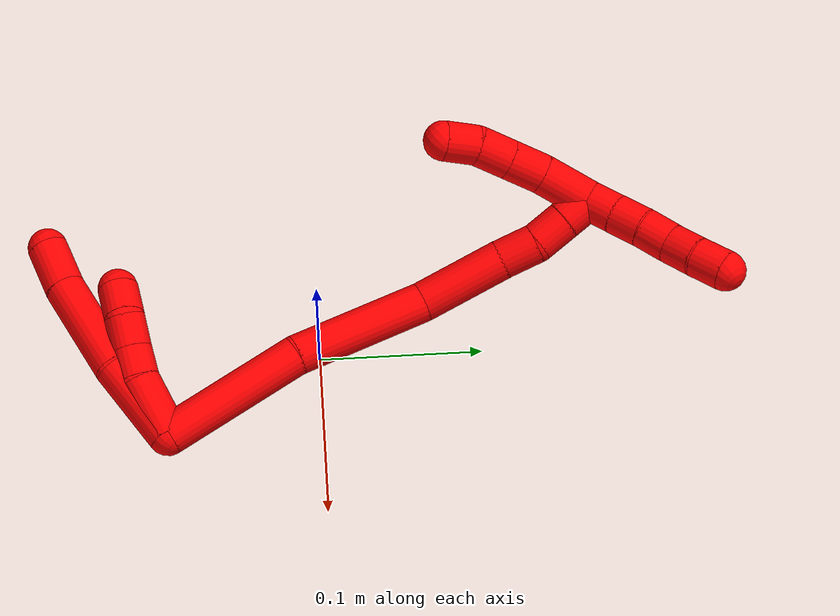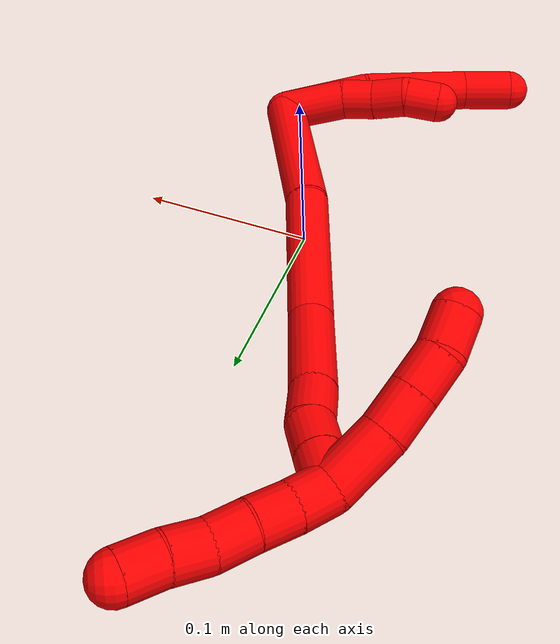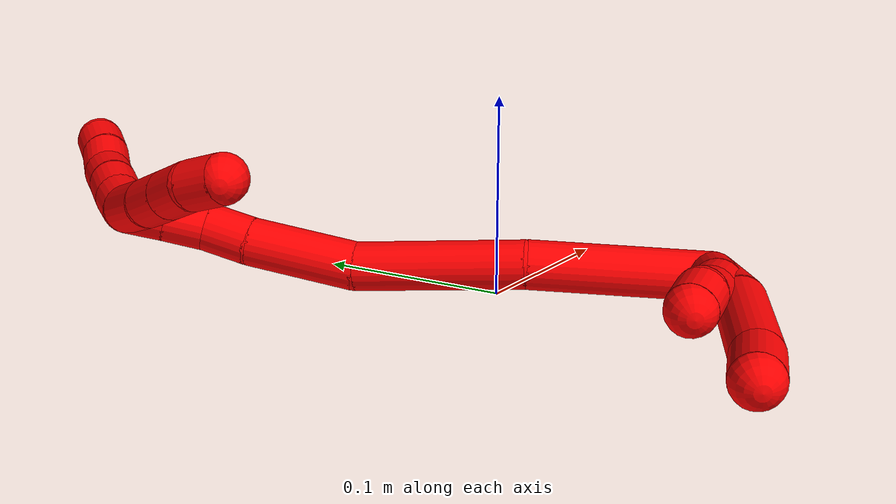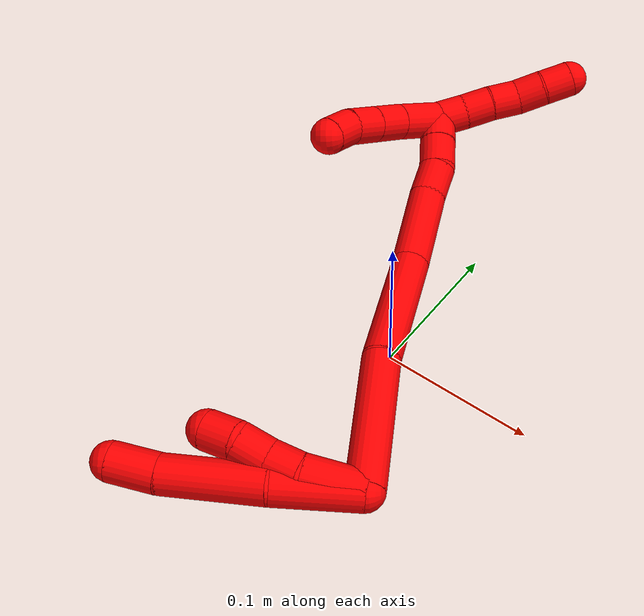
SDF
<sdf version="1.7">
 <world name="default">
  <model name="2">
   <static>0</static>
   <link name="2">
    <collision name="collision-cylinder-e_1_2_8">
     <pose>0.005006 -0.000635 0.026952 0.023548 0.183581 0.002168</pose>
     <geometry><cylinder><radius>0.0125</radius><length>0.054841</length></cylinder></geometry>
     <surface>
      <friction><ode><mu>1.16</mu><mu2>1.16</mu2><slip1>0</slip1><slip2>0</slip2></ode></friction>
      <contact><ode><kp>1e+06</kp><kd>1</kd><max_vel>0</max_vel><min_depth>0.001</min_depth></ode></contact>
     </surface>
    </collision>
    <visual name="visual-cylinder-e_1_2_8">
     <pose>0.005006 -0.000635 0.026952 0.023548 0.183581 0.002168</pose>
     <geometry><cylinder><radius>0.0125</radius><length>0.054841</length></cylinder></geometry>
     <material><ambient>1 0 0 1</ambient></material>
    </visual>
    <collision name="collision-cylinder-e_2_8_9">
     <pose>0.010612 0.001028 0.086255 -0.070917 0.018532 -0.000657</pose>
     <geometry><cylinder><radius>0.0125</radius><length>0.064875</length></cylinder></geometry>
     <surface>
      <friction><ode><mu>1.16</mu><mu2>1.16</mu2><slip1>0</slip1><slip2>0</slip2></ode></friction>
      <contact><ode><kp>1e+06</kp><kd>1</kd><max_vel>0</max_vel><min_depth>0.001</min_depth></ode></contact>
     </surface>
    </collision>
    <visual name="visual-cylinder-e_2_8_9">
     <pose>0.010612 0.001028 0.086255 -0.070917 0.018532 -0.000657</pose>
     <geometry><cylinder><radius>0.0125</radius><length>0.064875</length></cylinder></geometry>
     <material><ambient>1 0 0 1</ambient></material>
    </visual>
    <collision name="collision-cylinder-e_3_9_6">
     <pose>0.01199 0.006455 0.1334 -0.208388 0.051336 -0.005369</pose>
     <geometry><cylinder><radius>0.0125</radius><length>0.030284</length></cylinder></geometry>
     <surface>
      <friction><ode><mu>1.16</mu><mu2>1.16</mu2><slip1>0</slip1><slip2>0</slip2></ode></friction>
      <contact><ode><kp>1e+06</kp><kd>1</kd><max_vel>0</max_vel><min_depth>0.001</min_depth></ode></contact>
     </surface>
    </collision>
    <visual name="visual-cylinder-e_3_9_6">
     <pose>0.01199 0.006455 0.1334 -0.208388 0.051336 -0.005369</pose>
     <geometry><cylinder><radius>0.0125</radius><length>0.030284</length></cylinder></geometry>
     <material><ambient>1 0 0 1</ambient></material>
    </visual>
    <collision name="collision-cylinder-e_1_2_10">
     <pose>0.004845 0.003179 0.018459 -0.170541 0.253125 -0.021752</pose>
     <geometry><cylinder><radius>0.0125</radius><length>0.038693</length></cylinder></geometry>
     <surface>
      <friction><ode><mu>1.16</mu><mu2>1.16</mu2><slip1>0</slip1><slip2>0</slip2></ode></friction>
      <contact><ode><kp>1e+06</kp><kd>1</kd><max_vel>0</max_vel><min_depth>0.001</min_depth></ode></contact>
     </surface>
    </collision>
    <visual name="visual-cylinder-e_1_2_10">
     <pose>0.004845 0.003179 0.018459 -0.170541 0.253125 -0.021752</pose>
     <geometry><cylinder><radius>0.0125</radius><length>0.038693</length></cylinder></geometry>
     <material><ambient>1 0 0 1</ambient></material>
    </visual>
    <collision name="collision-cylinder-e_2_10_11">
     <pose>0.010783 0.009981 0.046183 -0.372785 0.109461 -0.020662</pose>
     <geometry><cylinder><radius>0.0125</radius><length>0.020019</length></cylinder></geometry>
     <surface>
      <friction><ode><mu>1.16</mu><mu2>1.16</mu2><slip1>0</slip1><slip2>0</slip2></ode></friction>
      <contact><ode><kp>1e+06</kp><kd>1</kd><max_vel>0</max_vel><min_depth>0.001</min_depth></ode></contact>
     </surface>
    </collision>
    <visual name="visual-cylinder-e_2_10_11">
     <pose>0.010783 0.009981 0.046183 -0.372785 0.109461 -0.020662</pose>
     <geometry><cylinder><radius>0.0125</radius><length>0.020019</length></cylinder></geometry>
     <material><ambient>1 0 0 1</ambient></material>
    </visual>
    <collision name="collision-cylinder-e_3_11_12">
     <pose>0.014507 0.01787 0.064547 -0.438345 0.256 -0.057322</pose>
     <geometry><cylinder><radius>0.0125</radius><length>0.020772</length></cylinder></geometry>
     <surface>
      <friction><ode><mu>1.16</mu><mu2>1.16</mu2><slip1>0</slip1><slip2>0</slip2></ode></friction>
      <contact><ode><kp>1e+06</kp><kd>1</kd><max_vel>0</max_vel><min_depth>0.001</min_depth></ode></contact>
     </surface>
    </collision>
    <visual name="visual-cylinder-e_3_11_12">
     <pose>0.014507 0.01787 0.064547 -0.438345 0.256 -0.057322</pose>
     <geometry><cylinder><radius>0.0125</radius><length>0.020772</length></cylinder></geometry>
     <material><ambient>1 0 0 1</ambient></material>
    </visual>
    <collision name="collision-cylinder-e_4_12_5">
     <pose>0.016392 0.025723 0.083225 -0.358365 -0.072606 0.013156</pose>
     <geometry><cylinder><radius>0.0125</radius><length>0.020516</length></cylinder></geometry>
     <surface>
      <friction><ode><mu>1.16</mu><mu2>1.16</mu2><slip1>0</slip1><slip2>0</slip2></ode></friction>
      <contact><ode><kp>1e+06</kp><kd>1</kd><max_vel>0</max_vel><min_depth>0.001</min_depth></ode></contact>
     </surface>
    </collision>
    <visual name="visual-cylinder-e_4_12_5">
     <pose>0.016392 0.025723 0.083225 -0.358365 -0.072606 0.013156</pose>
     <geometry><cylinder><radius>0.0125</radius><length>0.020516</length></cylinder></geometry>
     <material><ambient>1 0 0 1</ambient></material>
    </visual>
    <collision name="collision-cylinder-e_1_2_13">
     <pose>-0.007419 0.045401 -0.001266 -1.59868 -0.161927 0.166484</pose>
     <geometry><cylinder><radius>0.0125</radius><length>0.092042</length></cylinder></geometry>
     <surface>
      <friction><ode><mu>1.16</mu><mu2>1.16</mu2><slip1>0</slip1><slip2>0</slip2></ode></friction>
      <contact><ode><kp>1e+06</kp><kd>1</kd><max_vel>0</max_vel><min_depth>0.001</min_depth></ode></contact>
     </surface>
    </collision>
    <visual name="visual-cylinder-e_1_2_13">
     <pose>-0.007419 0.045401 -0.001266 -1.59868 -0.161927 0.166484</pose>
     <geometry><cylinder><radius>0.0125</radius><length>0.092042</length></cylinder></geometry>
     <material><ambient>1 0 0 1</ambient></material>
    </visual>
    <collision name="collision-cylinder-e_2_13_14">
     <pose>-0.026986 0.131829 -0.008568 -1.71687 -0.284952 0.329187</pose>
     <geometry><cylinder><radius>0.0125</radius><length>0.086422</length></cylinder></geometry>
     <surface>
      <friction><ode><mu>1.16</mu><mu2>1.16</mu2><slip1>0</slip1><slip2>0</slip2></ode></friction>
      <contact><ode><kp>1e+06</kp><kd>1</kd><max_vel>0</max_vel><min_depth>0.001</min_depth></ode></contact>
     </surface>
    </collision>
    <visual name="visual-cylinder-e_2_13_14">
     <pose>-0.026986 0.131829 -0.008568 -1.71687 -0.284952 0.329187</pose>
     <geometry><cylinder><radius>0.0125</radius><length>0.086422</length></cylinder></geometry>
     <material><ambient>1 0 0 1</ambient></material>
    </visual>
    <collision name="collision-cylinder-e_3_14_15">
     <pose>-0.040132 0.200325 -0.01916 -1.73517 -0.035864 0.042302</pose>
     <geometry><cylinder><radius>0.0125</radius><length>0.055725</length></cylinder></geometry>
     <surface>
      <friction><ode><mu>1.16</mu><mu2>1.16</mu2><slip1>0</slip1><slip2>0</slip2></ode></friction>
      <contact><ode><kp>1e+06</kp><kd>1</kd><max_vel>0</max_vel><min_depth>0.001</min_depth></ode></contact>
     </surface>
    </collision>
    <visual name="visual-cylinder-e_3_14_15">
     <pose>-0.040132 0.200325 -0.01916 -1.73517 -0.035864 0.042302</pose>
     <geometry><cylinder><radius>0.0125</radius><length>0.055725</length></cylinder></geometry>
     <material><ambient>1 0 0 1</ambient></material>
    </visual>
    <collision name="collision-cylinder-e_4_15_16">
     <pose>-0.040776 0.239444 -0.026712 -1.8225 0.029522 -0.038073</pose>
     <geometry><cylinder><radius>0.0125</radius><length>0.024066</length></cylinder></geometry>
     <surface>
      <friction><ode><mu>1.16</mu><mu2>1.16</mu2><slip1>0</slip1><slip2>0</slip2></ode></friction>
      <contact><ode><kp>1e+06</kp><kd>1</kd><max_vel>0</max_vel><min_depth>0.001</min_depth></ode></contact>
     </surface>
    </collision>
    <visual name="visual-cylinder-e_4_15_16">
     <pose>-0.040776 0.239444 -0.026712 -1.8225 0.029522 -0.038073</pose>
     <geometry><cylinder><radius>0.0125</radius><length>0.024066</length></cylinder></geometry>
     <material><ambient>1 0 0 1</ambient></material>
    </visual>
    <collision name="collision-cylinder-e_5_16_17">
     <pose>-0.040088 0.261935 -0.029511 -1.55264 0.030722 -0.030169</pose>
     <geometry><cylinder><radius>0.0125</radius><length>0.021699</length></cylinder></geometry>
     <surface>
      <friction><ode><mu>1.16</mu><mu2>1.16</mu2><slip1>0</slip1><slip2>0</slip2></ode></friction>
      <contact><ode><kp>1e+06</kp><kd>1</kd><max_vel>0</max_vel><min_depth>0.001</min_depth></ode></contact>
     </surface>
    </collision>
    <visual name="visual-cylinder-e_5_16_17">
     <pose>-0.040088 0.261935 -0.029511 -1.55264 0.030722 -0.030169</pose>
     <geometry><cylinder><radius>0.0125</radius><length>0.021699</length></cylinder></geometry>
     <material><ambient>1 0 0 1</ambient></material>
    </visual>
    <collision name="collision-cylinder-e_6_17_1">
     <pose>-0.039657 0.282794 -0.028966 -1.53604 0.009713 -0.009381</pose>
     <geometry><cylinder><radius>0.0125</radius><length>0.020046</length></cylinder></geometry>
     <surface>
      <friction><ode><mu>1.16</mu><mu2>1.16</mu2><slip1>0</slip1><slip2>0</slip2></ode></friction>
      <contact><ode><kp>1e+06</kp><kd>1</kd><max_vel>0</max_vel><min_depth>0.001</min_depth></ode></contact>
     </surface>
    </collision>
    <visual name="visual-cylinder-e_6_17_1">
     <pose>-0.039657 0.282794 -0.028966 -1.53604 0.009713 -0.009381</pose>
     <geometry><cylinder><radius>0.0125</radius><length>0.020046</length></cylinder></geometry>
     <material><ambient>1 0 0 1</ambient></material>
    </visual>
    <collision name="collision-cylinder-e_1_1_18">
     <pose>-0.040275 0.29656 -0.037861 -2.75624 -0.071563 0.362924</pose>
     <geometry><cylinder><radius>0.0125</radius><length>0.02</length></cylinder></geometry>
     <surface>
      <friction><ode><mu>1.16</mu><mu2>1.16</mu2><slip1>0</slip1><slip2>0</slip2></ode></friction>
      <contact><ode><kp>1e+06</kp><kd>1</kd><max_vel>0</max_vel><min_depth>0.001</min_depth></ode></contact>
     </surface>
    </collision>
    <visual name="visual-cylinder-e_1_1_18">
     <pose>-0.040275 0.29656 -0.037861 -2.75624 -0.071563 0.362924</pose>
     <geometry><cylinder><radius>0.0125</radius><length>0.02</length></cylinder></geometry>
     <material><ambient>1 0 0 1</ambient></material>
    </visual>
    <collision name="collision-cylinder-e_2_18_19">
     <pose>-0.040886 0.303865 -0.05645 -2.77801 0.010329 -0.056179</pose>
     <geometry><cylinder><radius>0.0125</radius><length>0.02</length></cylinder></geometry>
     <surface>
      <friction><ode><mu>1.16</mu><mu2>1.16</mu2><slip1>0</slip1><slip2>0</slip2></ode></friction>
      <contact><ode><kp>1e+06</kp><kd>1</kd><max_vel>0</max_vel><min_depth>0.001</min_depth></ode></contact>
     </surface>
    </collision>
    <visual name="visual-cylinder-e_2_18_19">
     <pose>-0.040886 0.303865 -0.05645 -2.77801 0.010329 -0.056179</pose>
     <geometry><cylinder><radius>0.0125</radius><length>0.02</length></cylinder></geometry>
     <material><ambient>1 0 0 1</ambient></material>
    </visual>
    <collision name="collision-cylinder-e_3_19_20">
     <pose>-0.041713 0.310678 -0.075204 -2.8084 -0.093087 0.540425</pose>
     <geometry><cylinder><radius>0.0125</radius><length>0.02</length></cylinder></geometry>
     <surface>
      <friction><ode><mu>1.16</mu><mu2>1.16</mu2><slip1>0</slip1><slip2>0</slip2></ode></friction>
      <contact><ode><kp>1e+06</kp><kd>1</kd><max_vel>0</max_vel><min_depth>0.001</min_depth></ode></contact>
     </surface>
    </collision>
    <visual name="visual-cylinder-e_3_19_20">
     <pose>-0.041713 0.310678 -0.075204 -2.8084 -0.093087 0.540425</pose>
     <geometry><cylinder><radius>0.0125</radius><length>0.02</length></cylinder></geometry>
     <material><ambient>1 0 0 1</ambient></material>
    </visual>
    <collision name="collision-cylinder-e_4_20_21">
     <pose>-0.041067 0.316857 -0.094046 -2.84113 0.158212 -0.964825</pose>
     <geometry><cylinder><radius>0.0125</radius><length>0.02</length></cylinder></geometry>
     <surface>
      <friction><ode><mu>1.16</mu><mu2>1.16</mu2><slip1>0</slip1><slip2>0</slip2></ode></friction>
      <contact><ode><kp>1e+06</kp><kd>1</kd><max_vel>0</max_vel><min_depth>0.001</min_depth></ode></contact>
     </surface>
    </collision>
    <visual name="visual-cylinder-e_4_20_21">
     <pose>-0.041067 0.316857 -0.094046 -2.84113 0.158212 -0.964825</pose>
     <geometry><cylinder><radius>0.0125</radius><length>0.02</length></cylinder></geometry>
     <material><ambient>1 0 0 1</ambient></material>
    </visual>
    <collision name="collision-cylinder-e_5_21_4">
     <pose>-0.039041 0.323321 -0.11282 -2.77919 0.045033 -0.244612</pose>
     <geometry><cylinder><radius>0.0125</radius><length>0.02</length></cylinder></geometry>
     <surface>
      <friction><ode><mu>1.16</mu><mu2>1.16</mu2><slip1>0</slip1><slip2>0</slip2></ode></friction>
      <contact><ode><kp>1e+06</kp><kd>1</kd><max_vel>0</max_vel><min_depth>0.001</min_depth></ode></contact>
     </surface>
    </collision>
    <visual name="visual-cylinder-e_5_21_4">
     <pose>-0.039041 0.323321 -0.11282 -2.77919 0.045033 -0.244612</pose>
     <geometry><cylinder><radius>0.0125</radius><length>0.02</length></cylinder></geometry>
     <material><ambient>1 0 0 1</ambient></material>
    </visual>
    <collision name="collision-cylinder-e_1_1_22">
     <pose>-0.031723 0.286145 -0.01548 0.4695 0.488884 0.119166</pose>
     <geometry><cylinder><radius>0.0125</radius><length>0.033373</length></cylinder></geometry>
     <surface>
      <friction><ode><mu>1.16</mu><mu2>1.16</mu2><slip1>0</slip1><slip2>0</slip2></ode></friction>
      <contact><ode><kp>1e+06</kp><kd>1</kd><max_vel>0</max_vel><min_depth>0.001</min_depth></ode></contact>
     </surface>
    </collision>
    <visual name="visual-cylinder-e_1_1_22">
     <pose>-0.031723 0.286145 -0.01548 0.4695 0.488884 0.119166</pose>
     <geometry><cylinder><radius>0.0125</radius><length>0.033373</length></cylinder></geometry>
     <material><ambient>1 0 0 1</ambient></material>
    </visual>
    <collision name="collision-cylinder-e_2_22_23">
     <pose>-0.017606 0.273792 0.005528 0.625813 0.57406 0.190426</pose>
     <geometry><cylinder><radius>0.0125</radius><length>0.02313</length></cylinder></geometry>
     <surface>
      <friction><ode><mu>1.16</mu><mu2>1.16</mu2><slip1>0</slip1><slip2>0</slip2></ode></friction>
      <contact><ode><kp>1e+06</kp><kd>1</kd><max_vel>0</max_vel><min_depth>0.001</min_depth></ode></contact>
     </surface>
    </collision>
    <visual name="visual-cylinder-e_2_22_23">
     <pose>-0.017606 0.273792 0.005528 0.625813 0.57406 0.190426</pose>
     <geometry><cylinder><radius>0.0125</radius><length>0.02313</length></cylinder></geometry>
     <material><ambient>1 0 0 1</ambient></material>
    </visual>
    <collision name="collision-cylinder-e_3_23_24">
     <pose>-0.005315 0.262705 0.020813 0.62935 0.580138 0.193702</pose>
     <geometry><cylinder><radius>0.0125</radius><length>0.02193</length></cylinder></geometry>
     <surface>
      <friction><ode><mu>1.16</mu><mu2>1.16</mu2><slip1>0</slip1><slip2>0</slip2></ode></friction>
      <contact><ode><kp>1e+06</kp><kd>1</kd><max_vel>0</max_vel><min_depth>0.001</min_depth></ode></contact>
     </surface>
    </collision>
    <visual name="visual-cylinder-e_3_23_24">
     <pose>-0.005315 0.262705 0.020813 0.62935 0.580138 0.193702</pose>
     <geometry><cylinder><radius>0.0125</radius><length>0.02193</length></cylinder></geometry>
     <material><ambient>1 0 0 1</ambient></material>
    </visual>
    <collision name="collision-cylinder-e_4_24_3">
     <pose>0.005996 0.24969 0.03372 0.945968 0.513866 0.267299</pose>
     <geometry><cylinder><radius>0.0125</radius><length>0.021567</length></cylinder></geometry>
     <surface>
      <friction><ode><mu>1.16</mu><mu2>1.16</mu2><slip1>0</slip1><slip2>0</slip2></ode></friction>
      <contact><ode><kp>1e+06</kp><kd>1</kd><max_vel>0</max_vel><min_depth>0.001</min_depth></ode></contact>
     </surface>
    </collision>
    <visual name="visual-cylinder-e_4_24_3">
     <pose>0.005996 0.24969 0.03372 0.945968 0.513866 0.267299</pose>
     <geometry><cylinder><radius>0.0125</radius><length>0.021567</length></cylinder></geometry>
     <material><ambient>1 0 0 1</ambient></material>
    </visual>
    <collision name="collision-sphere-3">
     <pose>0.011296 0.242074 0.039213 0 -0 0</pose>
     <geometry><sphere><radius>0.0125</radius></sphere></geometry>
     <surface>
      <friction><ode><mu>1.16</mu><mu2>1.16</mu2><slip1>0</slip1><slip2>0</slip2></ode></friction>
      <contact><ode><kp>1e+06</kp><kd>1</kd><max_vel>0</max_vel><min_depth>0.001</min_depth></ode></contact>
     </surface>
    </collision>
    <visual name="visual-sphere-3">
     <pose>0.011296 0.242074 0.039213 0 -0 0</pose>
     <geometry><sphere><radius>0.0125</radius></sphere></geometry>
     <material><ambient>1 0 0 1</ambient></material>
    </visual>
    <collision name="collision-sphere-24">
     <pose>0.000695 0.257307 0.028227 0 -0 0</pose>
     <geometry><sphere><radius>0.0125</radius></sphere></geometry>
     <surface>
      <friction><ode><mu>1.16</mu><mu2>1.16</mu2><slip1>0</slip1><slip2>0</slip2></ode></friction>
      <contact><ode><kp>1e+06</kp><kd>1</kd><max_vel>0</max_vel><min_depth>0.001</min_depth></ode></contact>
     </surface>
    </collision>
    <visual name="visual-sphere-24">
     <pose>0.000695 0.257307 0.028227 0 -0 0</pose>
     <geometry><sphere><radius>0.0125</radius></sphere></geometry>
     <material><ambient>1 0 0 1</ambient></material>
    </visual>
    <collision name="collision-sphere-23">
     <pose>-0.011326 0.268103 0.013399 0 -0 0</pose>
     <geometry><sphere><radius>0.0125</radius></sphere></geometry>
     <surface>
      <friction><ode><mu>1.16</mu><mu2>1.16</mu2><slip1>0</slip1><slip2>0</slip2></ode></friction>
      <contact><ode><kp>1e+06</kp><kd>1</kd><max_vel>0</max_vel><min_depth>0.001</min_depth></ode></contact>
     </surface>
    </collision>
    <visual name="visual-sphere-23">
     <pose>-0.011326 0.268103 0.013399 0 -0 0</pose>
     <geometry><sphere><radius>0.0125</radius></sphere></geometry>
     <material><ambient>1 0 0 1</ambient></material>
    </visual>
    <collision name="collision-sphere-22">
     <pose>-0.023886 0.27948 -0.002343 0 -0 0</pose>
     <geometry><sphere><radius>0.0125</radius></sphere></geometry>
     <surface>
      <friction><ode><mu>1.16</mu><mu2>1.16</mu2><slip1>0</slip1><slip2>0</slip2></ode></friction>
      <contact><ode><kp>1e+06</kp><kd>1</kd><max_vel>0</max_vel><min_depth>0.001</min_depth></ode></contact>
     </surface>
    </collision>
    <visual name="visual-sphere-22">
     <pose>-0.023886 0.27948 -0.002343 0 -0 0</pose>
     <geometry><sphere><radius>0.0125</radius></sphere></geometry>
     <material><ambient>1 0 0 1</ambient></material>
    </visual>
    <collision name="collision-sphere-4">
     <pose>-0.038591 0.326863 -0.122161 0 -0 0</pose>
     <geometry><sphere><radius>0.0125</radius></sphere></geometry>
     <surface>
      <friction><ode><mu>1.16</mu><mu2>1.16</mu2><slip1>0</slip1><slip2>0</slip2></ode></friction>
      <contact><ode><kp>1e+06</kp><kd>1</kd><max_vel>0</max_vel><min_depth>0.001</min_depth></ode></contact>
     </surface>
    </collision>
    <visual name="visual-sphere-4">
     <pose>-0.038591 0.326863 -0.122161 0 -0 0</pose>
     <geometry><sphere><radius>0.0125</radius></sphere></geometry>
     <material><ambient>1 0 0 1</ambient></material>
    </visual>
    <collision name="collision-sphere-21">
     <pose>-0.039491 0.31978 -0.103479 0 -0 0</pose>
     <geometry><sphere><radius>0.0125</radius></sphere></geometry>
     <surface>
      <friction><ode><mu>1.16</mu><mu2>1.16</mu2><slip1>0</slip1><slip2>0</slip2></ode></friction>
      <contact><ode><kp>1e+06</kp><kd>1</kd><max_vel>0</max_vel><min_depth>0.001</min_depth></ode></contact>
     </surface>
    </collision>
    <visual name="visual-sphere-21">
     <pose>-0.039491 0.31978 -0.103479 0 -0 0</pose>
     <geometry><sphere><radius>0.0125</radius></sphere></geometry>
     <material><ambient>1 0 0 1</ambient></material>
    </visual>
    <collision name="collision-sphere-20">
     <pose>-0.042642 0.313934 -0.084614 0 -0 0</pose>
     <geometry><sphere><radius>0.0125</radius></sphere></geometry>
     <surface>
      <friction><ode><mu>1.16</mu><mu2>1.16</mu2><slip1>0</slip1><slip2>0</slip2></ode></friction>
      <contact><ode><kp>1e+06</kp><kd>1</kd><max_vel>0</max_vel><min_depth>0.001</min_depth></ode></contact>
     </surface>
    </collision>
    <visual name="visual-sphere-20">
     <pose>-0.042642 0.313934 -0.084614 0 -0 0</pose>
     <geometry><sphere><radius>0.0125</radius></sphere></geometry>
     <material><ambient>1 0 0 1</ambient></material>
    </visual>
    <collision name="collision-sphere-11">
     <pose>0.011877 0.013605 0.05545 0 -0 0</pose>
     <geometry><sphere><radius>0.0125</radius></sphere></geometry>
     <surface>
      <friction><ode><mu>1.16</mu><mu2>1.16</mu2><slip1>0</slip1><slip2>0</slip2></ode></friction>
      <contact><ode><kp>1e+06</kp><kd>1</kd><max_vel>0</max_vel><min_depth>0.001</min_depth></ode></contact>
     </surface>
    </collision>
    <visual name="visual-sphere-11">
     <pose>0.011877 0.013605 0.05545 0 -0 0</pose>
     <geometry><sphere><radius>0.0125</radius></sphere></geometry>
     <material><ambient>1 0 0 1</ambient></material>
    </visual>
    <collision name="collision-sphere-10">
     <pose>0.00969 0.006358 0.036917 0 -0 0</pose>
     <geometry><sphere><radius>0.0125</radius></sphere></geometry>
     <surface>
      <friction><ode><mu>1.16</mu><mu2>1.16</mu2><slip1>0</slip1><slip2>0</slip2></ode></friction>
      <contact><ode><kp>1e+06</kp><kd>1</kd><max_vel>0</max_vel><min_depth>0.001</min_depth></ode></contact>
     </surface>
    </collision>
    <visual name="visual-sphere-10">
     <pose>0.00969 0.006358 0.036917 0 -0 0</pose>
     <geometry><sphere><radius>0.0125</radius></sphere></geometry>
     <material><ambient>1 0 0 1</ambient></material>
    </visual>
    <collision name="collision-sphere-6">
     <pose>0.012767 0.009584 0.148195 0 -0 0</pose>
     <geometry><sphere><radius>0.0125</radius></sphere></geometry>
     <surface>
      <friction><ode><mu>1.16</mu><mu2>1.16</mu2><slip1>0</slip1><slip2>0</slip2></ode></friction>
      <contact><ode><kp>1e+06</kp><kd>1</kd><max_vel>0</max_vel><min_depth>0.001</min_depth></ode></contact>
     </surface>
    </collision>
    <visual name="visual-sphere-6">
     <pose>0.012767 0.009584 0.148195 0 -0 0</pose>
     <geometry><sphere><radius>0.0125</radius></sphere></geometry>
     <material><ambient>1 0 0 1</ambient></material>
    </visual>
    <collision name="collision-sphere-9">
     <pose>0.011213 0.003326 0.118605 0 -0 0</pose>
     <geometry><sphere><radius>0.0125</radius></sphere></geometry>
     <surface>
      <friction><ode><mu>1.16</mu><mu2>1.16</mu2><slip1>0</slip1><slip2>0</slip2></ode></friction>
      <contact><ode><kp>1e+06</kp><kd>1</kd><max_vel>0</max_vel><min_depth>0.001</min_depth></ode></contact>
     </surface>
    </collision>
    <visual name="visual-sphere-9">
     <pose>0.011213 0.003326 0.118605 0 -0 0</pose>
     <geometry><sphere><radius>0.0125</radius></sphere></geometry>
     <material><ambient>1 0 0 1</ambient></material>
    </visual>
    <collision name="collision-sphere-2">
     <geometry><sphere><radius>0.0125</radius></sphere></geometry>
     <surface>
      <friction><ode><mu>1.16</mu><mu2>1.16</mu2><slip1>0</slip1><slip2>0</slip2></ode></friction>
      <contact><ode><kp>1e+06</kp><kd>1</kd><max_vel>0</max_vel><min_depth>0.001</min_depth></ode></contact>
     </surface>
    </collision>
    <visual name="visual-sphere-2">
     <geometry><sphere><radius>0.0125</radius></sphere></geometry>
     <material><ambient>1 0 0 1</ambient></material>
    </visual>
    <collision name="collision-sphere-19">
     <pose>-0.040783 0.307421 -0.065795 0 -0 0</pose>
     <geometry><sphere><radius>0.0125</radius></sphere></geometry>
     <surface>
      <friction><ode><mu>1.16</mu><mu2>1.16</mu2><slip1>0</slip1><slip2>0</slip2></ode></friction>
      <contact><ode><kp>1e+06</kp><kd>1</kd><max_vel>0</max_vel><min_depth>0.001</min_depth></ode></contact>
     </surface>
    </collision>
    <visual name="visual-sphere-19">
     <pose>-0.040783 0.307421 -0.065795 0 -0 0</pose>
     <geometry><sphere><radius>0.0125</radius></sphere></geometry>
     <material><ambient>1 0 0 1</ambient></material>
    </visual>
    <collision name="collision-sphere-8">
     <pose>0.010011 -0.00127 0.053904 0 -0 0</pose>
     <geometry><sphere><radius>0.0125</radius></sphere></geometry>
     <surface>
      <friction><ode><mu>1.16</mu><mu2>1.16</mu2><slip1>0</slip1><slip2>0</slip2></ode></friction>
      <contact><ode><kp>1e+06</kp><kd>1</kd><max_vel>0</max_vel><min_depth>0.001</min_depth></ode></contact>
     </surface>
    </collision>
    <visual name="visual-sphere-8">
     <pose>0.010011 -0.00127 0.053904 0 -0 0</pose>
     <geometry><sphere><radius>0.0125</radius></sphere></geometry>
     <material><ambient>1 0 0 1</ambient></material>
    </visual>
    <collision name="collision-sphere-12">
     <pose>0.017137 0.022134 0.073645 0 -0 0</pose>
     <geometry><sphere><radius>0.0125</radius></sphere></geometry>
     <surface>
      <friction><ode><mu>1.16</mu><mu2>1.16</mu2><slip1>0</slip1><slip2>0</slip2></ode></friction>
      <contact><ode><kp>1e+06</kp><kd>1</kd><max_vel>0</max_vel><min_depth>0.001</min_depth></ode></contact>
     </surface>
    </collision>
    <visual name="visual-sphere-12">
     <pose>0.017137 0.022134 0.073645 0 -0 0</pose>
     <geometry><sphere><radius>0.0125</radius></sphere></geometry>
     <material><ambient>1 0 0 1</ambient></material>
    </visual>
    <collision name="collision-sphere-5">
     <pose>0.015648 0.029311 0.092806 0 -0 0</pose>
     <geometry><sphere><radius>0.0125</radius></sphere></geometry>
     <surface>
      <friction><ode><mu>1.16</mu><mu2>1.16</mu2><slip1>0</slip1><slip2>0</slip2></ode></friction>
      <contact><ode><kp>1e+06</kp><kd>1</kd><max_vel>0</max_vel><min_depth>0.001</min_depth></ode></contact>
     </surface>
    </collision>
    <visual name="visual-sphere-5">
     <pose>0.015648 0.029311 0.092806 0 -0 0</pose>
     <geometry><sphere><radius>0.0125</radius></sphere></geometry>
     <material><ambient>1 0 0 1</ambient></material>
    </visual>
    <collision name="collision-sphere-13">
     <pose>-0.014839 0.090803 -0.002532 0 -0 0</pose>
     <geometry><sphere><radius>0.0125</radius></sphere></geometry>
     <surface>
      <friction><ode><mu>1.16</mu><mu2>1.16</mu2><slip1>0</slip1><slip2>0</slip2></ode></friction>
      <contact><ode><kp>1e+06</kp><kd>1</kd><max_vel>0</max_vel><min_depth>0.001</min_depth></ode></contact>
     </surface>
    </collision>
    <visual name="visual-sphere-13">
     <pose>-0.014839 0.090803 -0.002532 0 -0 0</pose>
     <geometry><sphere><radius>0.0125</radius></sphere></geometry>
     <material><ambient>1 0 0 1</ambient></material>
    </visual>
    <collision name="collision-sphere-14">
     <pose>-0.039133 0.172856 -0.014604 0 -0 0</pose>
     <geometry><sphere><radius>0.0125</radius></sphere></geometry>
     <surface>
      <friction><ode><mu>1.16</mu><mu2>1.16</mu2><slip1>0</slip1><slip2>0</slip2></ode></friction>
      <contact><ode><kp>1e+06</kp><kd>1</kd><max_vel>0</max_vel><min_depth>0.001</min_depth></ode></contact>
     </surface>
    </collision>
    <visual name="visual-sphere-14">
     <pose>-0.039133 0.172856 -0.014604 0 -0 0</pose>
     <geometry><sphere><radius>0.0125</radius></sphere></geometry>
     <material><ambient>1 0 0 1</ambient></material>
    </visual>
    <collision name="collision-sphere-15">
     <pose>-0.041131 0.227795 -0.023717 0 -0 0</pose>
     <geometry><sphere><radius>0.0125</radius></sphere></geometry>
     <surface>
      <friction><ode><mu>1.16</mu><mu2>1.16</mu2><slip1>0</slip1><slip2>0</slip2></ode></friction>
      <contact><ode><kp>1e+06</kp><kd>1</kd><max_vel>0</max_vel><min_depth>0.001</min_depth></ode></contact>
     </surface>
    </collision>
    <visual name="visual-sphere-15">
     <pose>-0.041131 0.227795 -0.023717 0 -0 0</pose>
     <geometry><sphere><radius>0.0125</radius></sphere></geometry>
     <material><ambient>1 0 0 1</ambient></material>
    </visual>
    <collision name="collision-sphere-16">
     <pose>-0.040421 0.251093 -0.029708 0 -0 0</pose>
     <geometry><sphere><radius>0.0125</radius></sphere></geometry>
     <surface>
      <friction><ode><mu>1.16</mu><mu2>1.16</mu2><slip1>0</slip1><slip2>0</slip2></ode></friction>
      <contact><ode><kp>1e+06</kp><kd>1</kd><max_vel>0</max_vel><min_depth>0.001</min_depth></ode></contact>
     </surface>
    </collision>
    <visual name="visual-sphere-16">
     <pose>-0.040421 0.251093 -0.029708 0 -0 0</pose>
     <geometry><sphere><radius>0.0125</radius></sphere></geometry>
     <material><ambient>1 0 0 1</ambient></material>
    </visual>
    <collision name="collision-sphere-17">
     <pose>-0.039754 0.272778 -0.029314 0 -0 0</pose>
     <geometry><sphere><radius>0.0125</radius></sphere></geometry>
     <surface>
      <friction><ode><mu>1.16</mu><mu2>1.16</mu2><slip1>0</slip1><slip2>0</slip2></ode></friction>
      <contact><ode><kp>1e+06</kp><kd>1</kd><max_vel>0</max_vel><min_depth>0.001</min_depth></ode></contact>
     </surface>
    </collision>
    <visual name="visual-sphere-17">
     <pose>-0.039754 0.272778 -0.029314 0 -0 0</pose>
     <geometry><sphere><radius>0.0125</radius></sphere></geometry>
     <material><ambient>1 0 0 1</ambient></material>
    </visual>
    <collision name="collision-sphere-1">
     <pose>-0.03956 0.292811 -0.028618 0 -0 0</pose>
     <geometry><sphere><radius>0.0125</radius></sphere></geometry>
     <surface>
      <friction><ode><mu>1.16</mu><mu2>1.16</mu2><slip1>0</slip1><slip2>0</slip2></ode></friction>
      <contact><ode><kp>1e+06</kp><kd>1</kd><max_vel>0</max_vel><min_depth>0.001</min_depth></ode></contact>
     </surface>
    </collision>
    <visual name="visual-sphere-1">
     <pose>-0.03956 0.292811 -0.028618 0 -0 0</pose>
     <geometry><sphere><radius>0.0125</radius></sphere></geometry>
     <material><ambient>1 0 0 1</ambient></material>
    </visual>
    <collision name="collision-sphere-18">
     <pose>-0.04099 0.300309 -0.047104 0 -0 0</pose>
     <geometry><sphere><radius>0.0125</radius></sphere></geometry>
     <surface>
      <friction><ode><mu>1.16</mu><mu2>1.16</mu2><slip1>0</slip1><slip2>0</slip2></ode></friction>
      <contact><ode><kp>1e+06</kp><kd>1</kd><max_vel>0</max_vel><min_depth>0.001</min_depth></ode></contact>
     </surface>
    </collision>
    <visual name="visual-sphere-18">
     <pose>-0.04099 0.300309 -0.047104 0 -0 0</pose>
     <geometry><sphere><radius>0.0125</radius></sphere></geometry>
     <material><ambient>1 0 0 1</ambient></material>
    </visual>
    <inertial>
     <pose>-0.014724 0.137804 0.007039 0 -0 0</pose>
     <mass>0.75</mass>
     <inertia>
      <ixx>0.000244</ixx>
      <ixy>0</ixy>
      <ixz>0</ixz>
      <iyy>0.000107</iyy>
      <iyz>0</iyz>
      <izz>-0.000114</izz>
     </inertia>
    </inertial>
   </link>
   <pose>0.049629 -0.094092 0.011711 1.99868 -1.33707 -1.44057</pose>
  </model>
 </world>
</sdf>
